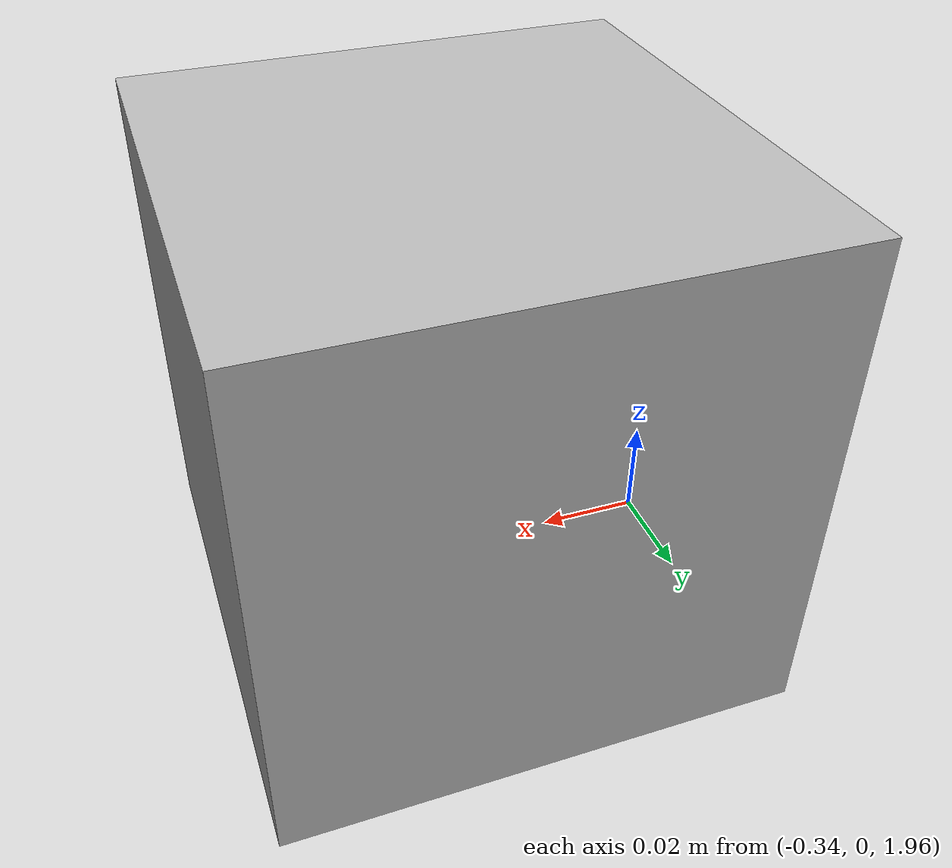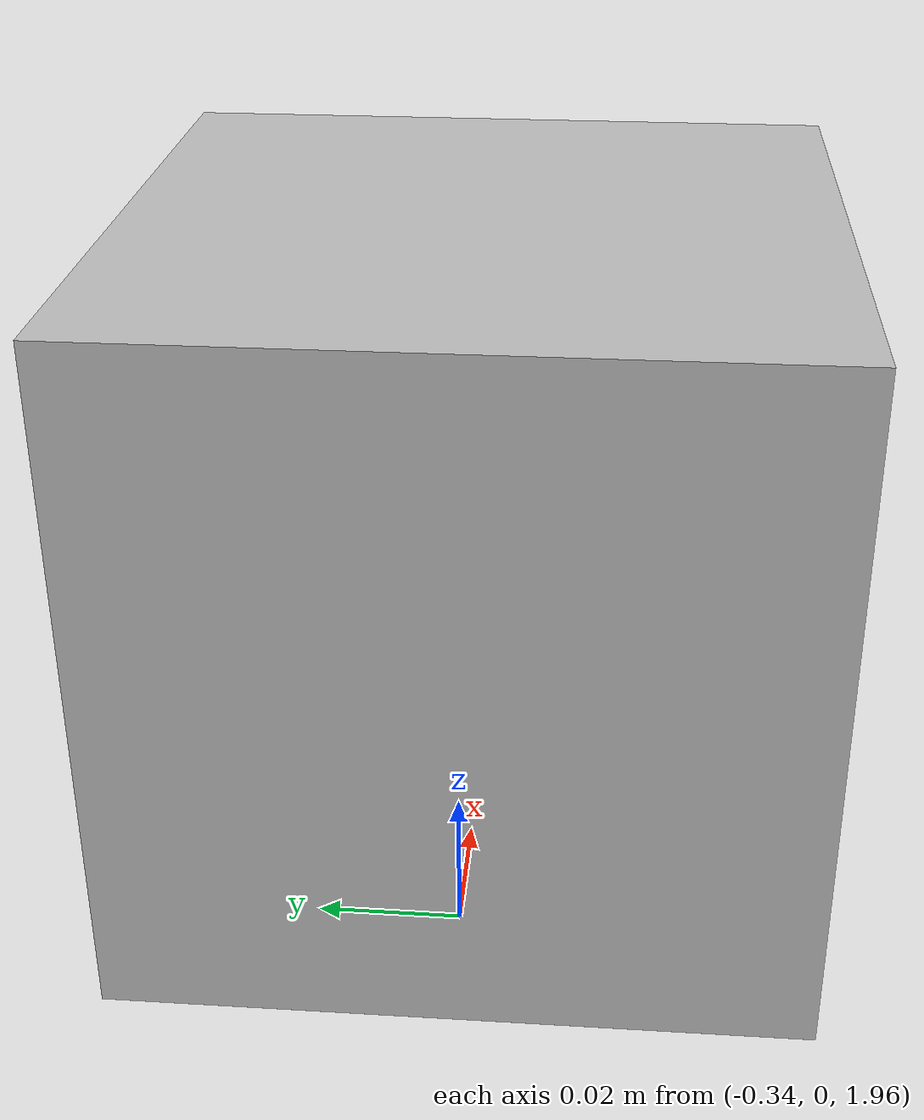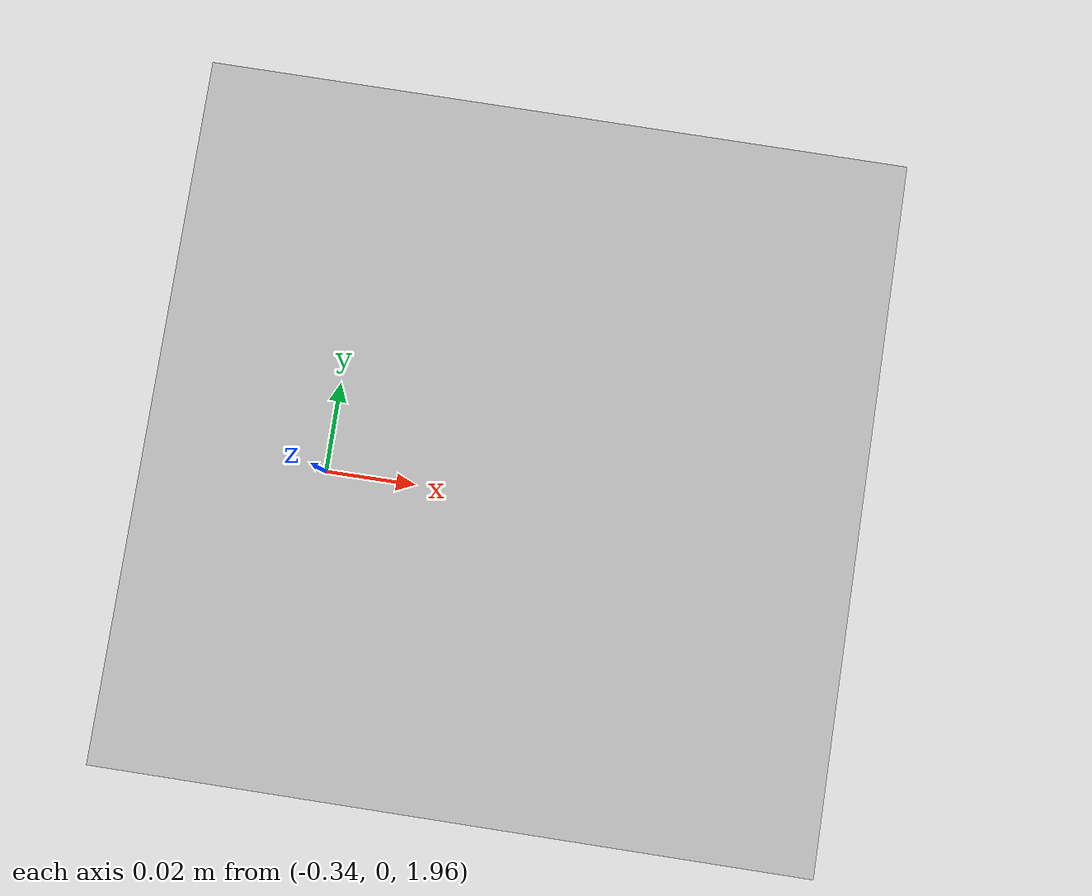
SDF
<?xml version="1.0" encoding="UTF-8"?>
<sdf version="1.6">
  <world name="empty_world">
    <gravity>0 0 -9.8</gravity>
    <include>
      <uri>model://sun</uri>
    </include>

    <include>
        <uri>model://ground_plane</uri>
    </include>

    <model name="box">
      <pose>-0.3 0.0 2.0 0.0 0.0 0.0</pose>
      <link name="base_link">
        <visual name="visual">
          <geometry>
            <box>
              <size>0.1 0.1 0.1</size>
            </box>
          </geometry>
        </visual>
        <collision name="collision">
          <geometry>
            <box>
              <size>0.1 0.1 0.1</size>
            </box>
          </geometry>
          <surface>
            <contact>
              <ode>
                <max_vel>0.0</max_vel>
                <min_depth>0.001</min_depth>
              </ode>
            </contact>
            <friction>
              <ode>
                <mu>3</mu>
                <mu2>3</mu2>
              </ode>
            </friction>
          </surface>
        </collision>
      </link>
    </model>
  </world>
</sdf>
